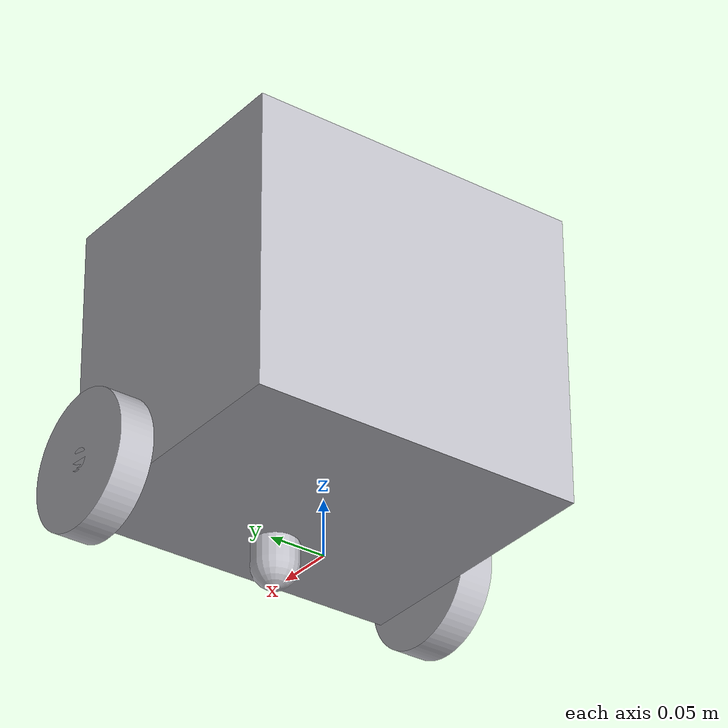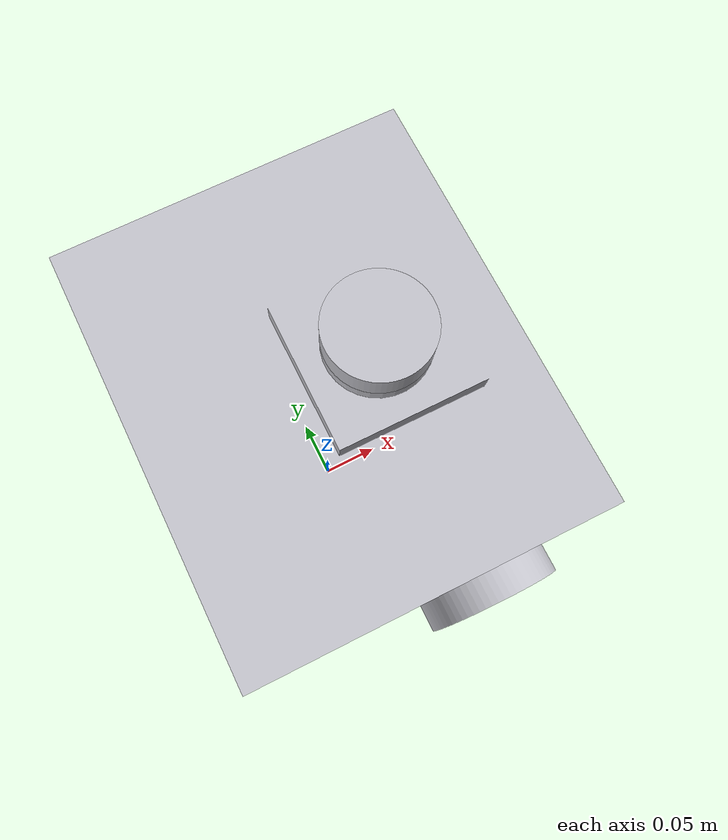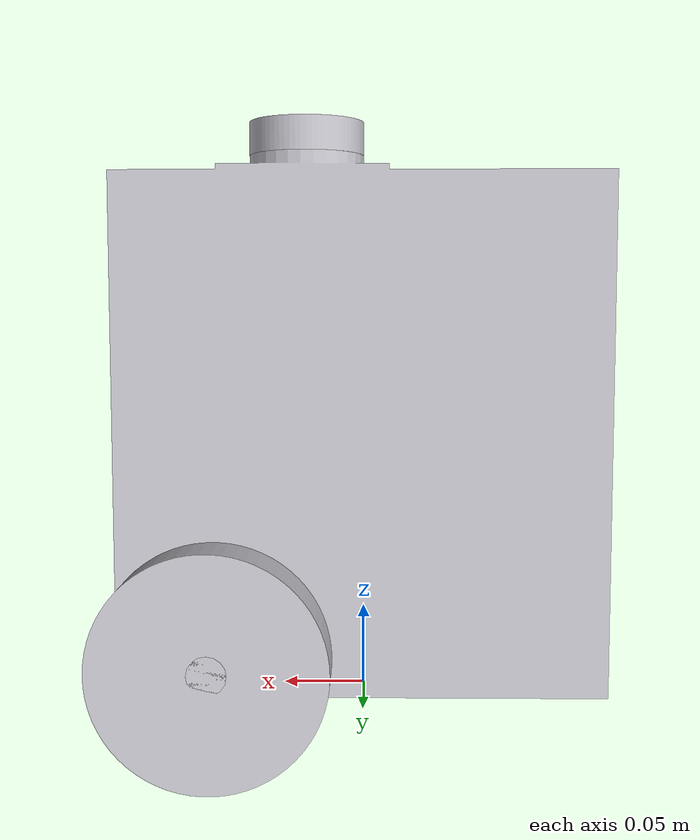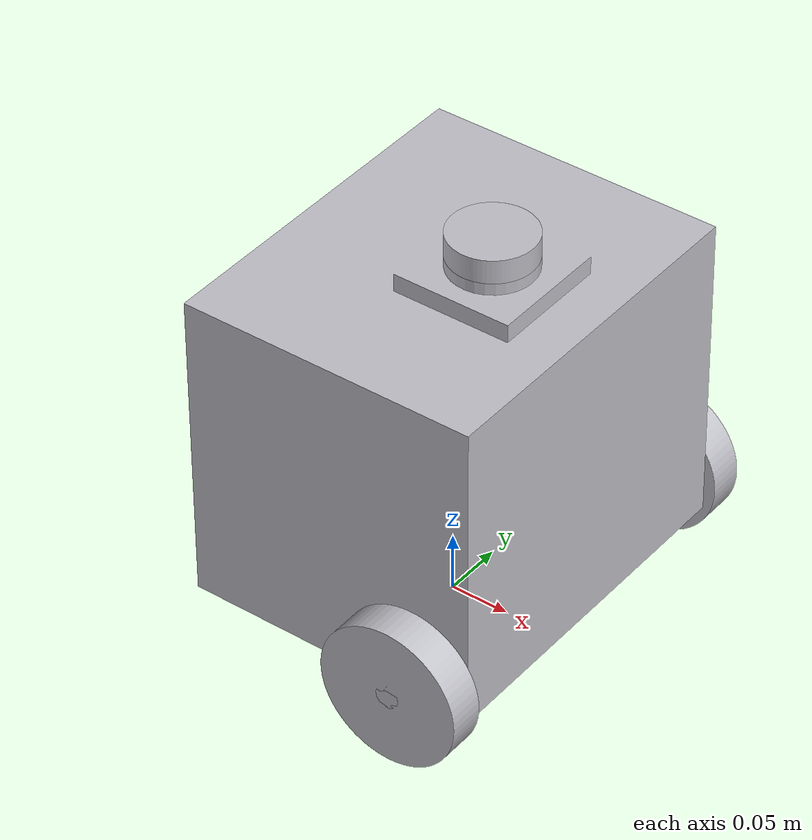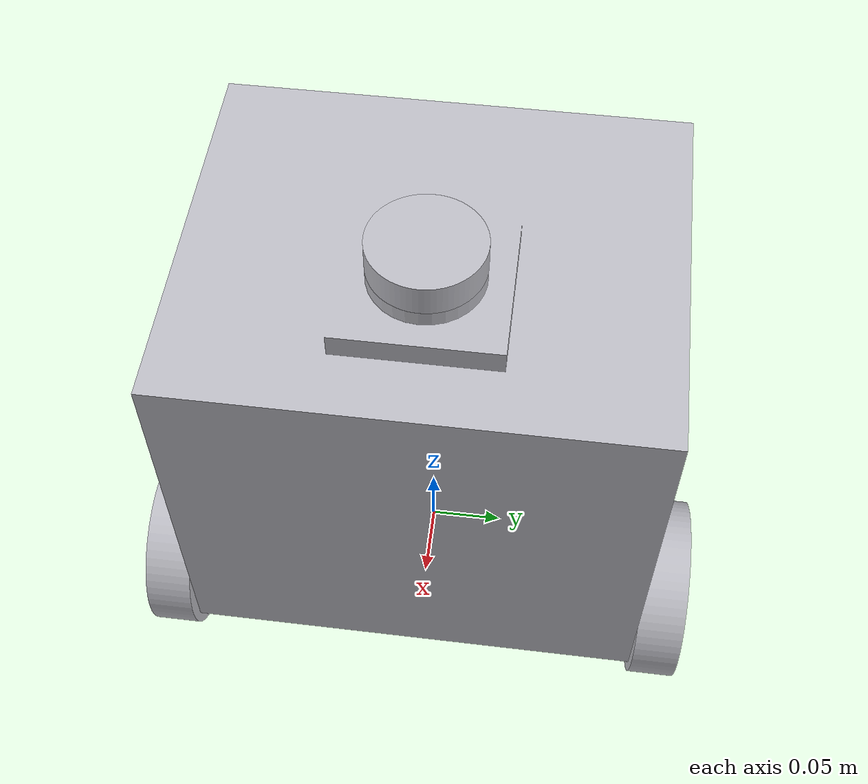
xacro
<?xml version="1.0" ?>
<robot name="robot_rover" xmlns:xacro="http://www.ros.org/wiki/xacro">

<xacro:include filename="$(find robot_rover_description)/urdf/materials.xacro" />
<xacro:include filename="$(find robot_rover_description)/urdf/robot_rover.trans" />
<xacro:include filename="$(find robot_rover_description)/urdf/robot_rover.gazebo" />
<link name="base_link">
  <inertial>
    <origin xyz="0.0005333566780635441 -2.89241795315588e-17 0.17341859806595633" rpy="0 0 0"/>
    <mass value="157.97514244861068"/>
    <inertia ixx="2.127575" iyy="1.769985" izz="1.992979" ixy="-0.0" iyz="-0.0" ixz="-0.002861"/>
  </inertial>
  <visual>
    <origin xyz="0 0 0" rpy="0 0 0"/>
    <geometry>
      <mesh filename="package://robot_rover_description/meshes/base_link.stl" scale="0.001 0.001 0.001"/>
    </geometry>
    <material name="silver"/>
  </visual>
  <collision>
    <origin xyz="0 0 0" rpy="0 0 0"/>
    <geometry>
      <mesh filename="package://robot_rover_description/meshes/base_link.stl" scale="0.001 0.001 0.001"/>
    </geometry>
  </collision>
</link>

<link name="left_1">
  <inertial>
    <origin xyz="0.0 -0.015000000000000041 -6.938893903907228e-18" rpy="0 0 0"/>
    <mass value="2.663442251713429"/>
    <inertia ixx="0.002597" iyy="0.004794" izz="0.002597" ixy="0.0" iyz="-0.0" ixz="-0.0"/>
  </inertial>
  <visual>
    <origin xyz="-0.075 0.15 -0.06" rpy="0 0 0"/>
    <geometry>
      <mesh filename="package://robot_rover_description/meshes/left_1.stl" scale="0.001 0.001 0.001"/>
    </geometry>
    <material name="silver"/>
  </visual>
  <collision>
    <origin xyz="-0.075 0.15 -0.06" rpy="0 0 0"/>
    <geometry>
      <mesh filename="package://robot_rover_description/meshes/left_1.stl" scale="0.001 0.001 0.001"/>
    </geometry>
  </collision>
</link>

<link name="right_1">
  <inertial>
    <origin xyz="0.0 0.015000000000000041 -6.938893903907228e-18" rpy="0 0 0"/>
    <mass value="2.663442251713429"/>
    <inertia ixx="0.002597" iyy="0.004794" izz="0.002597" ixy="0.0" iyz="0.0" ixz="-0.0"/>
  </inertial>
  <visual>
    <origin xyz="-0.075 -0.15 -0.06" rpy="0 0 0"/>
    <geometry>
      <mesh filename="package://robot_rover_description/meshes/right_1.stl" scale="0.001 0.001 0.001"/>
    </geometry>
    <material name="silver"/>
  </visual>
  <collision>
    <origin xyz="-0.075 -0.15 -0.06" rpy="0 0 0"/>
    <geometry>
      <mesh filename="package://robot_rover_description/meshes/right_1.stl" scale="0.001 0.001 0.001"/>
    </geometry>
  </collision>
</link>

<link name="lidar_1">
  <inertial>
    <origin xyz="6.938893903907228e-18 -2.954093418429606e-17 0.010000000000000009" rpy="0 0 0"/>
    <mass value="0.604206807101657"/>
    <inertia ixx="0.000205" iyy="0.000205" izz="0.00037" ixy="-0.0" iyz="-0.0" ixz="0.0"/>
  </inertial>
  <visual>
    <origin xyz="-0.035 0.0 -0.33" rpy="0 0 0"/>
    <geometry>
      <mesh filename="package://robot_rover_description/meshes/lidar_1.stl" scale="0.001 0.001 0.001"/>
    </geometry>
    <material name="silver"/>
  </visual>
  <collision>
    <origin xyz="-0.035 0.0 -0.33" rpy="0 0 0"/>
    <geometry>
      <mesh filename="package://robot_rover_description/meshes/lidar_1.stl" scale="0.001 0.001 0.001"/>
    </geometry>
  </collision>
</link>

<joint name="Revolute 1" type="continuous">
  <origin xyz="0.075 -0.15 0.06" rpy="0 0 0"/>
  <parent link="base_link"/>
  <child link="left_1"/>
  <axis xyz="0.0 1.0 0.0"/>
</joint>

<joint name="Revolute 2" type="continuous">
  <origin xyz="0.075 0.15 0.06" rpy="0 0 0"/>
  <parent link="base_link"/>
  <child link="right_1"/>
  <axis xyz="0.0 -1.0 0.0"/>
</joint>

<joint name="Rigid 3" type="fixed">
  <origin xyz="0.035 0.0 0.33" rpy="0 0 0"/>
  <parent link="base_link"/>
  <child link="lidar_1"/>
</joint>

</robot>
